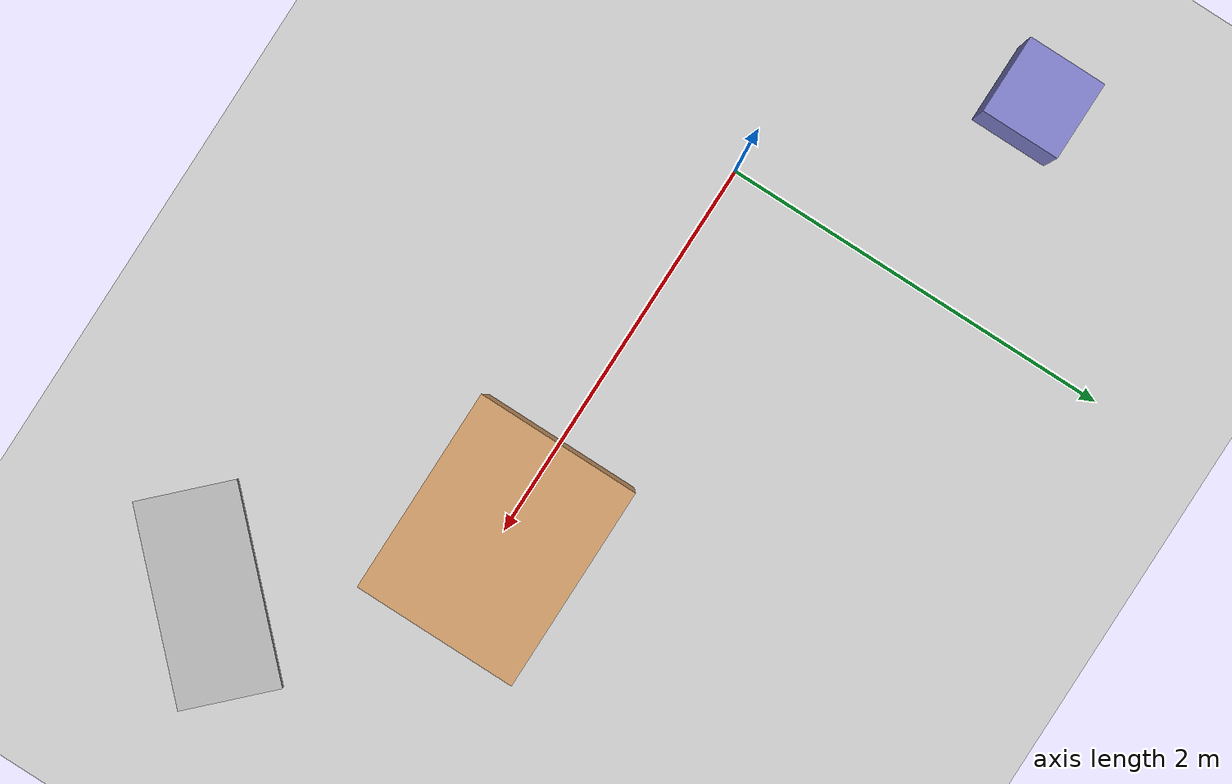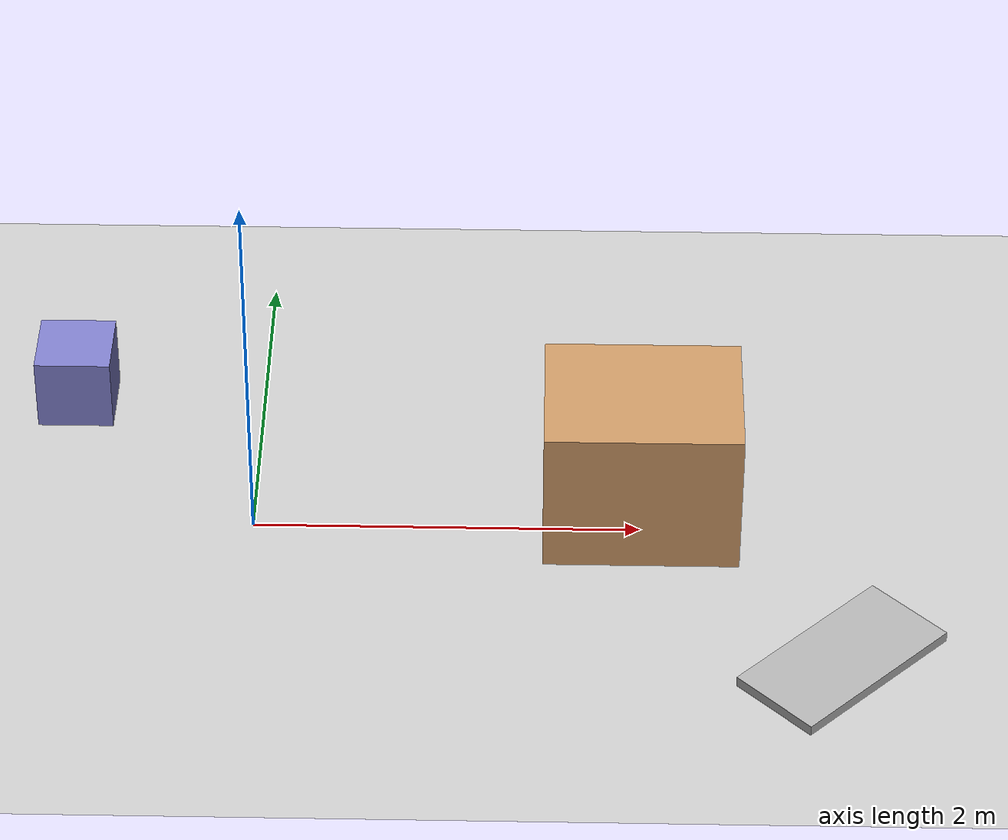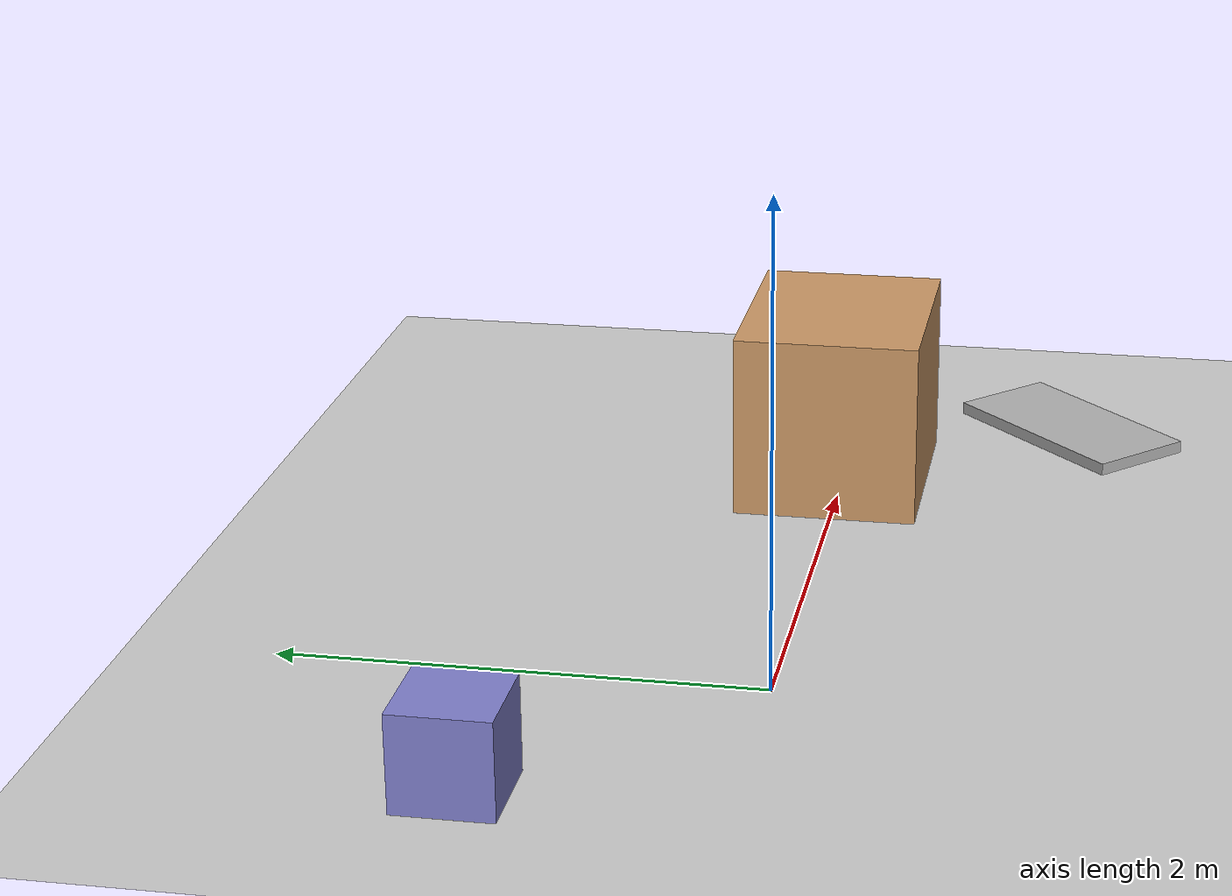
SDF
<?xml version="1.0" ?>
<sdf version="1.7">
  <world name="simple_humanoid_world">
    <!-- Include the default ground plane -->
    <include>
      <uri>model://ground_plane</uri>
    </include>

    <!-- Include the default sun -->
    <include>
      <uri>model://sun</uri>
    </include>

    <!-- Add a simple table for humanoid to interact with -->
    <model name="table">
      <pose>2 0 0.5 0 0 0</pose>
      <link name="link">
        <collision name="collision">
          <geometry>
            <box>
              <size>1.0 0.8 0.8</size>
            </box>
          </geometry>
        </collision>
        <visual name="visual">
          <geometry>
            <box>
              <size>1.0 0.8 0.8</size>
            </box>
          </geometry>
          <material>
            <ambient>0.8 0.6 0.4 1</ambient>
            <diffuse>0.8 0.6 0.4 1</diffuse>
            <specular>0.1 0.1 0.1 1</specular>
          </material>
        </visual>
        <inertial>
          <mass>10.0</mass>
          <inertia>
            <ixx>1.0</ixx>
            <ixy>0.0</ixy>
            <ixz>0.0</ixz>
            <iyy>1.0</iyy>
            <iyz>0.0</iyz>
            <izz>1.0</izz>
          </inertia>
        </inertial>
      </link>
    </model>

    <!-- Add a simple obstacle -->
    <model name="obstacle">
      <pose>-1 1 0.2 0 0 0</pose>
      <link name="link">
        <collision name="collision">
          <geometry>
            <box>
              <size>0.4 0.4 0.4</size>
            </box>
          </geometry>
        </collision>
        <visual name="visual">
          <geometry>
            <box>
              <size>0.4 0.4 0.4</size>
            </box>
          </geometry>
          <material>
            <ambient>0.5 0.5 0.8 1</ambient>
            <diffuse>0.5 0.5 0.8 1</diffuse>
            <specular>0.1 0.1 0.1 1</specular>
          </material>
        </visual>
        <inertial>
          <mass>5.0</mass>
          <inertia>
            <ixx>0.1</ixx>
            <ixy>0.0</ixy>
            <ixz>0.0</ixz>
            <iyy>0.1</iyy>
            <iyz>0.0</iyz>
            <izz>0.1</izz>
          </inertia>
        </inertial>
      </link>
    </model>

    <!-- Add a simple ramp -->
    <model name="ramp">
      <pose>3 -1 0 0 0 0.785</pose> <!-- 45 degree angle -->
      <link name="link">
        <collision name="collision">
          <geometry>
            <box>
              <size>1.0 0.5 0.1</size>
            </box>
          </geometry>
        </collision>
        <visual name="visual">
          <geometry>
            <box>
              <size>1.0 0.5 0.1</size>
            </box>
          </geometry>
          <material>
            <ambient>0.7 0.7 0.7 1</ambient>
            <diffuse>0.7 0.7 0.7 1</diffuse>
            <specular>0.1 0.1 0.1 1</specular>
          </material>
        </visual>
        <inertial>
          <mass>8.0</mass>
          <inertia>
            <ixx>0.5</ixx>
            <ixy>0.0</ixy>
            <ixz>0.0</ixz>
            <iyy>0.5</iyy>
            <iyz>0.0</iyz>
            <izz>0.5</izz>
          </inertia>
        </inertial>
      </link>
    </model>

    <!-- Physics engine configuration -->
    <physics name="default_physics" type="ode">
      <max_step_size>0.001</max_step_size>
      <real_time_factor>1.0</real_time_factor>
      <real_time_update_rate>1000</real_time_update_rate>
      <gravity>0 0 -9.8</gravity>
    </physics>

    <!-- GUI Configuration -->
    <gui fullscreen="0">
      <camera name="user_camera">
        <pose>5 -5 2 0 0.4 1.5707</pose>
        <view_controller>orbit</view_controller>
        <projection_type>perspective</projection_type>
      </camera>
    </gui>
  </world>
</sdf>
